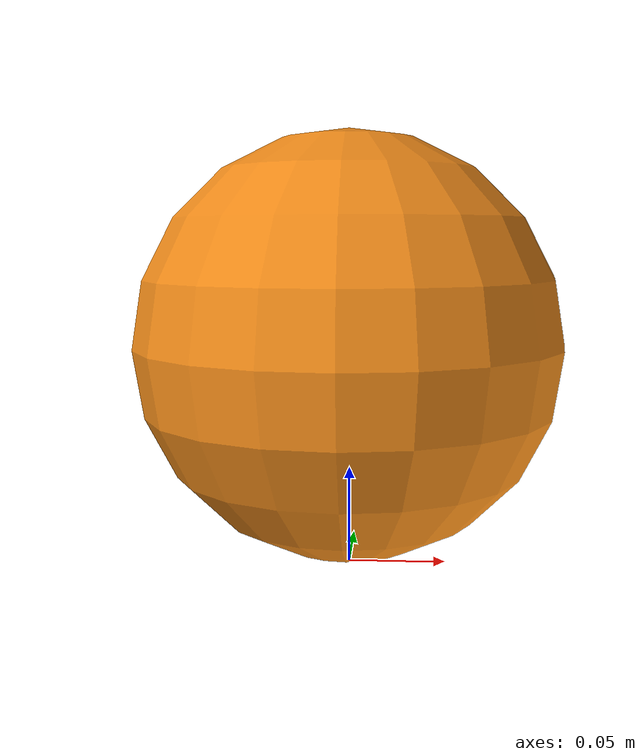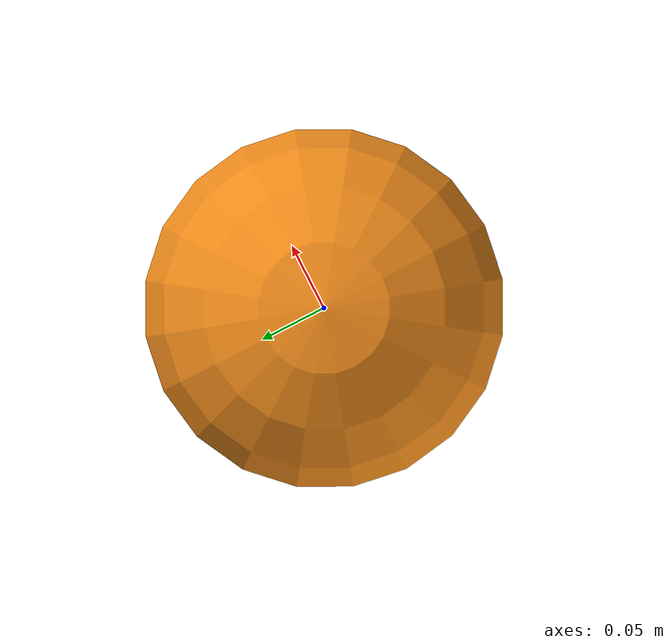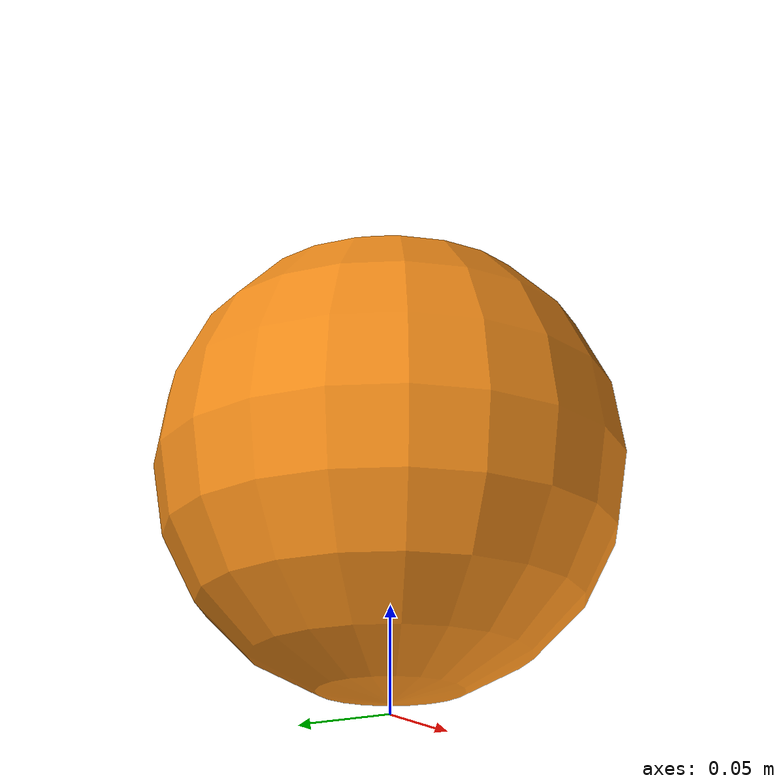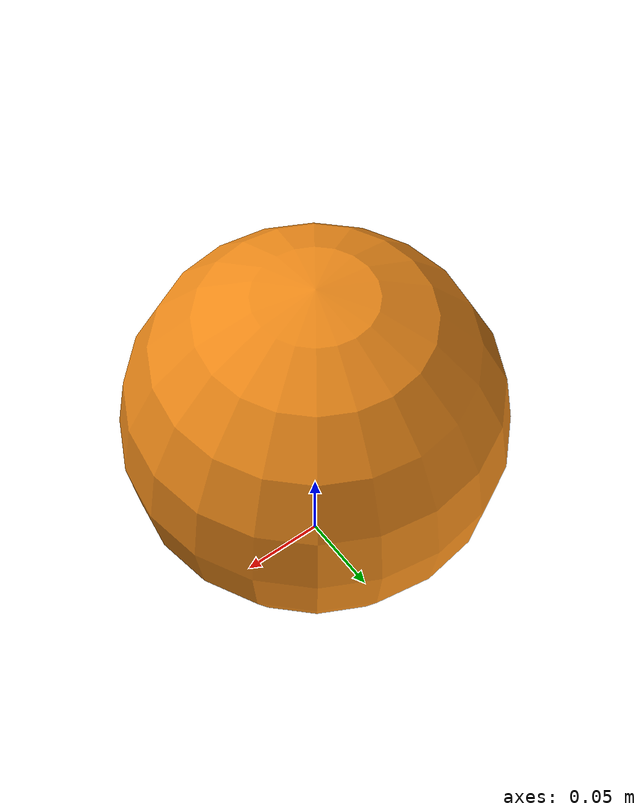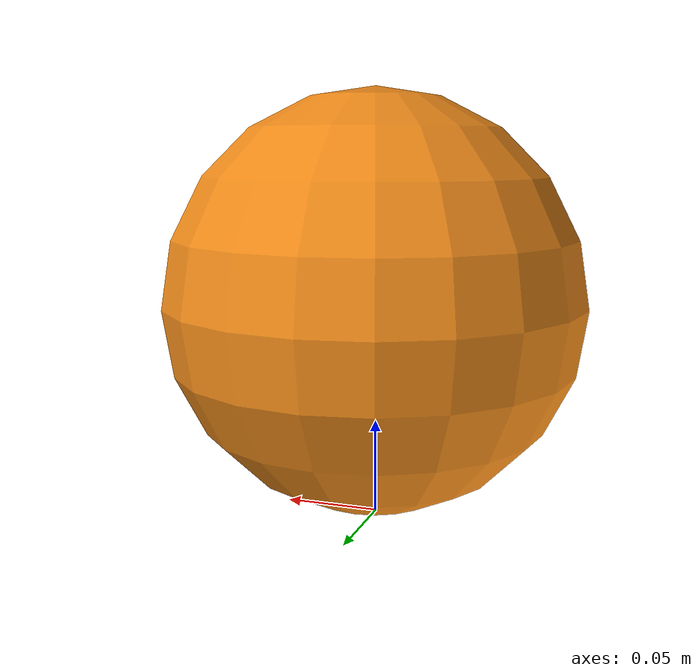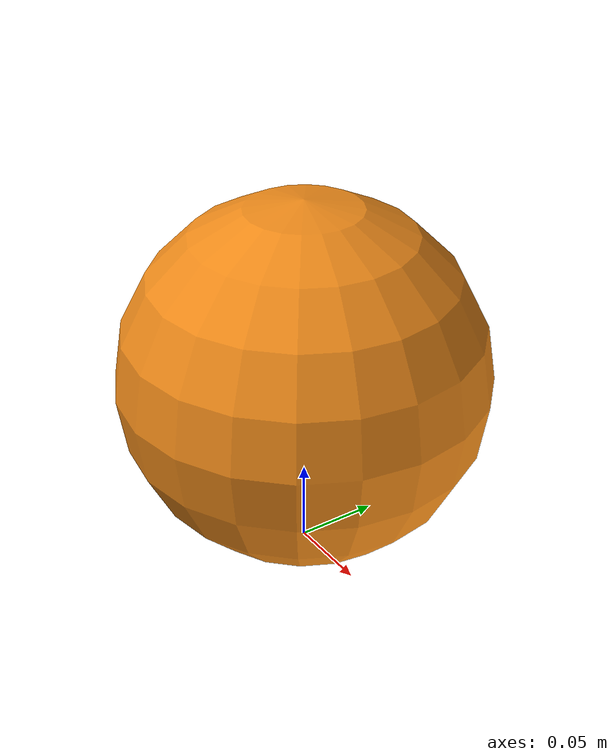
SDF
<?xml version="1.0" ?>
<sdf version="1.5">
  <model name="RoboCup MSL Ball">
   <pose>0 0 0.115 0 3.14 0</pose>
    <static>false</static>
    <link name="ball">
        <inertial>
          <mass>0.41</mass>
          <inertia>
            <ixx>3.2e-03</ixx>
            <iyy>3.2e-03</iyy>
            <izz>3.2e-03</izz>
            <ixy>0</ixy>
            <ixz>0</ixz>
            <iyz>0</iyz>
          </inertia>
        </inertial>
      <collision name="collision">
        <geometry>
          <sphere>
            <radius>0.11</radius>
          </sphere>
        </geometry>
        <surface>
            <bounce>
              <restitution_coefficient>0.6</restitution_coefficient>
              <threshold>0.01</threshold>
            </bounce>
            <friction>
              <ode>
                <mu>1</mu>
                <mu2>1</mu2>
                <slip1>0.0</slip1>
                <slip2>0.0</slip2>
              </ode>
            </friction>
            <contact>
              <ode>
                <max_vel>10</max_vel>
                <min_depth>0.001</min_depth>
              </ode>
            </contact>
          </surface>
      </collision>
      <visual name="visual">
        <geometry>
            <sphere>
            <radius>0.11</radius>
          </sphere>
         </geometry>
         <material>
          <script>
            <uri>model://msl_orange_ball/materials/scripts/</uri>
            <uri>model://msl_orange_ball/materials/textures/</uri>
            <name>RoboCupBall/Orange</name>
          </script>
        </material>
      </visual>

      <velocity_decay>
        <linear>0.001</linear>
        <angular>0.05</angular>
      </velocity_decay>
      <self_collide>false</self_collide>
      <gravity>true</gravity>
    </link>
  </model>
</sdf>
